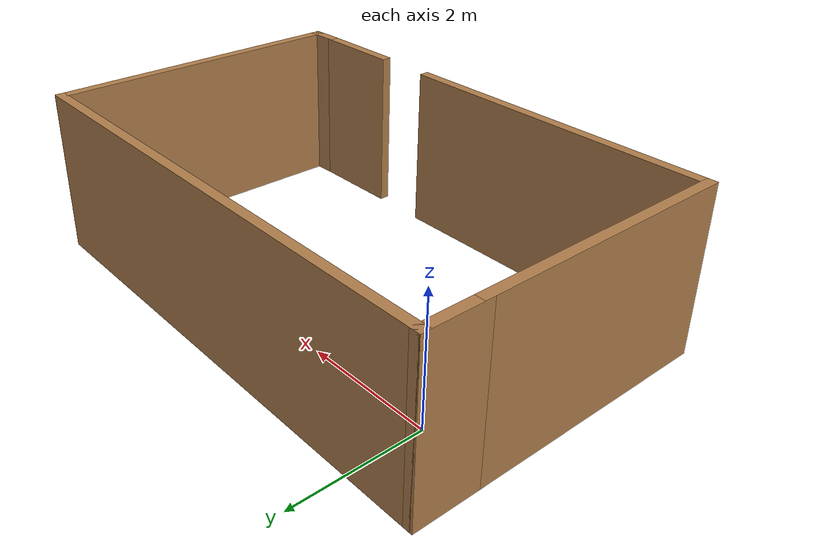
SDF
<?xml version='1.0'?>
<sdf version='1.7'>
  <model name='mundo_teste_01'>
    <pose>2.78601 -1.25828 0 0 -0 0</pose>
    <link name='Wall_10'>
      <collision name='Wall_10_Collision'>
        <geometry>
          <box>
            <size>1.5 0.15 2.5</size>
          </box>
        </geometry>
        <pose>0 0 1.25 0 -0 0</pose>
      </collision>
      <visual name='Wall_10_Visual'>
        <pose>0 0 1.25 0 -0 0</pose>
        <geometry>
          <box>
            <size>1.5 0.15 2.5</size>
          </box>
        </geometry>
        <material>
          <script>
            <uri>file://media/materials/scripts/gazebo.material</uri>
            <name>Gazebo/Wood</name>
          </script>
          <ambient>1 1 1 1</ambient>
        </material>
        <meta>
          <layer>0</layer>
        </meta>
      </visual>
      <pose>2.75046 -2.35533 0 0 -0 0</pose>
    </link>
    <link name='Wall_13'>
      <collision name='Wall_13_Collision'>
        <geometry>
          <box>
            <size>1 0.15 2.5</size>
          </box>
        </geometry>
        <pose>0 0 1.25 0 -0 0</pose>
      </collision>
      <visual name='Wall_13_Visual'>
        <pose>0 0 1.25 0 -0 0</pose>
        <geometry>
          <box>
            <size>1 0.15 2.5</size>
          </box>
        </geometry>
        <material>
          <script>
            <uri>file://media/materials/scripts/gazebo.material</uri>
            <name>Gazebo/Wood</name>
          </script>
          <ambient>1 1 1 1</ambient>
        </material>
        <meta>
          <layer>0</layer>
        </meta>
      </visual>
      <pose>-3.80131 1.93295 0 0 -0 1.5708</pose>
    </link>
    <link name='Wall_14'>
      <collision name='Wall_14_Collision'>
        <geometry>
          <box>
            <size>7.75 0.15 2.5</size>
          </box>
        </geometry>
        <pose>0 0 1.25 0 -0 0</pose>
      </collision>
      <visual name='Wall_14_Visual'>
        <pose>0 0 1.25 0 -0 0</pose>
        <geometry>
          <box>
            <size>7.75 0.15 2.5</size>
          </box>
        </geometry>
        <material>
          <script>
            <uri>file://media/materials/scripts/gazebo.material</uri>
            <name>Gazebo/Wood</name>
          </script>
          <ambient>1 1 1 1</ambient>
        </material>
        <meta>
          <layer>0</layer>
        </meta>
      </visual>
      <pose>-0.001309 2.35795 0 0 -0 0</pose>
    </link>
    <link name='Wall_15'>
      <collision name='Wall_15_Collision'>
        <geometry>
          <box>
            <size>4.75 0.15 2.5</size>
          </box>
        </geometry>
        <pose>0 0 1.25 0 -0 0</pose>
      </collision>
      <visual name='Wall_15_Visual'>
        <pose>0 0 1.25 0 -0 0</pose>
        <geometry>
          <box>
            <size>4.75 0.15 2.5</size>
          </box>
        </geometry>
        <material>
          <script>
            <uri>file://media/materials/scripts/gazebo.material</uri>
            <name>Gazebo/Wood</name>
          </script>
          <ambient>1 1 1 1</ambient>
        </material>
        <meta>
          <layer>0</layer>
        </meta>
      </visual>
      <pose>3.79869 0.057948 0 0 -0 -1.5708</pose>
    </link>
    <link name='Wall_16'>
      <collision name='Wall_16_Collision'>
        <geometry>
          <box>
            <size>0.25 0.15 2.5</size>
          </box>
        </geometry>
        <pose>0 0 1.25 0 -0 0</pose>
      </collision>
      <visual name='Wall_16_Visual'>
        <pose>0 0 1.25 0 -0 0</pose>
        <geometry>
          <box>
            <size>0.25 0.15 2.5</size>
          </box>
        </geometry>
        <material>
          <script>
            <uri>file://media/materials/scripts/gazebo.material</uri>
            <name>Gazebo/Wood</name>
          </script>
          <ambient>1 1 1 1</ambient>
        </material>
        <meta>
          <layer>0</layer>
        </meta>
      </visual>
      <pose>3.79869 -2.29205 0 0 -0 -1.5708</pose>
    </link>
    <link name='Wall_17'>
      <collision name='Wall_17_Collision'>
        <geometry>
          <box>
            <size>0.523467 0.15 2.5</size>
          </box>
        </geometry>
        <pose>0 0 1.25 0 -0 0</pose>
      </collision>
      <visual name='Wall_17_Visual'>
        <pose>0 0 1.25 0 -0 0</pose>
        <geometry>
          <box>
            <size>0.523467 0.15 2.5</size>
          </box>
        </geometry>
        <material>
          <script>
            <uri>file://media/materials/scripts/gazebo.material</uri>
            <name>Gazebo/Wood</name>
          </script>
          <ambient>1 1 1 1</ambient>
        </material>
        <meta>
          <layer>0</layer>
        </meta>
      </visual>
      <pose>3.61207 -2.34869 0 0 -0 -3.10603</pose>
    </link>
    <link name='Wall_4'>
      <collision name='Wall_4_Collision'>
        <geometry>
          <box>
            <size>4 0.15 2.5</size>
          </box>
        </geometry>
        <pose>0 0 1.25 0 -0 0</pose>
      </collision>
      <visual name='Wall_4_Visual'>
        <pose>0 0 1.25 0 -0 0</pose>
        <geometry>
          <box>
            <size>4 0.15 2.5</size>
          </box>
        </geometry>
        <material>
          <script>
            <uri>file://media/materials/scripts/gazebo.material</uri>
            <name>Gazebo/Wood</name>
          </script>
          <ambient>1 1 1 1</ambient>
        </material>
        <meta>
          <layer>0</layer>
        </meta>
      </visual>
      <pose>-3.80131 -0.417052 0 0 -0 -1.5708</pose>
    </link>
    <link name='Wall_5'>
      <collision name='Wall_5_Collision'>
        <geometry>
          <box>
            <size>5 0.15 2.5</size>
          </box>
        </geometry>
        <pose>0 0 1.25 0 -0 0</pose>
      </collision>
      <visual name='Wall_5_Visual'>
        <pose>0 0 1.25 0 -0 0</pose>
        <geometry>
          <box>
            <size>5 0.15 2.5</size>
          </box>
        </geometry>
        <material>
          <script>
            <uri>file://media/materials/scripts/gazebo.material</uri>
            <name>Gazebo/Wood</name>
          </script>
          <ambient>1 1 1 1</ambient>
        </material>
        <meta>
          <layer>0</layer>
        </meta>
      </visual>
      <pose>-1.37631 -2.34205 0 0 -0 0</pose>
    </link>
    <static>1</static>
  </model>
</sdf>
